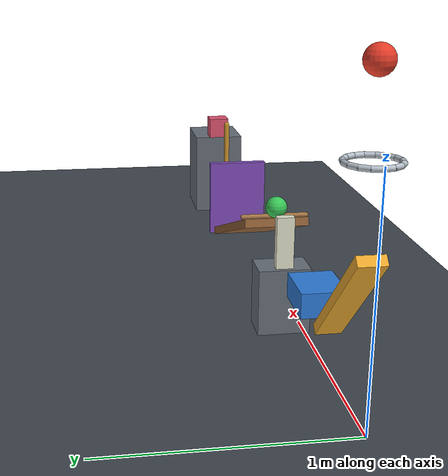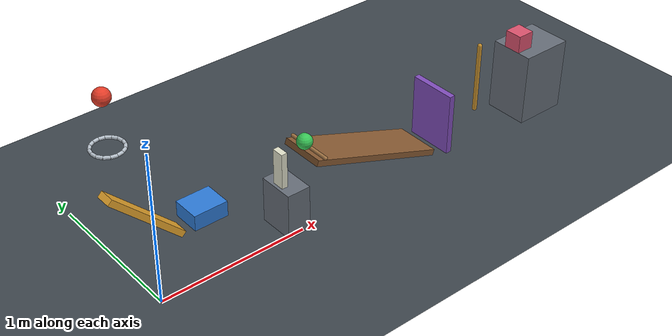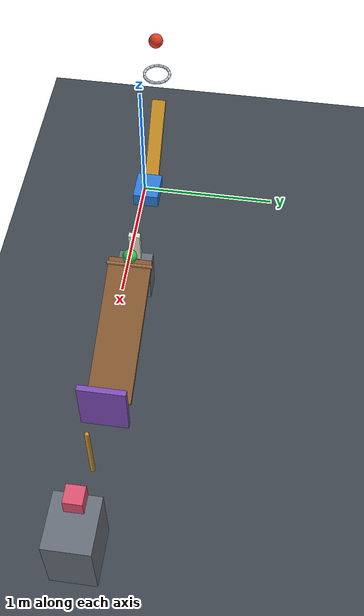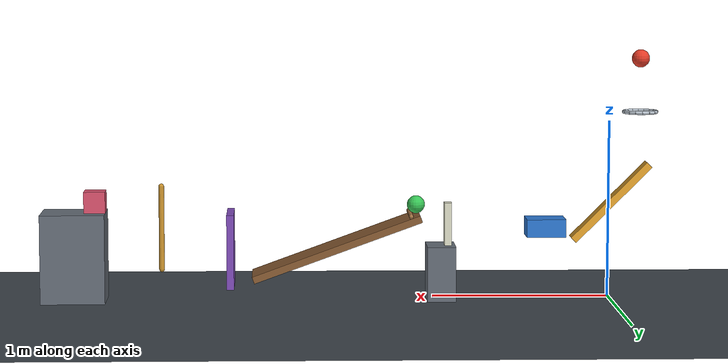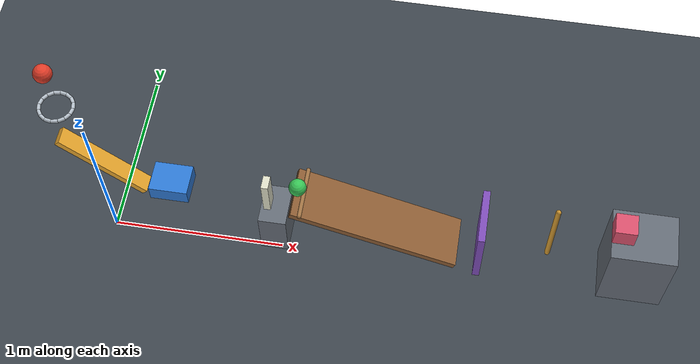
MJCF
<mujoco model="passive_chain">
  <compiler angle="degree" autolimits="true" inertiafromgeom="true"/>
  <option timestep="0.002" gravity="0 0 -9.81" integrator="implicitfast" solver="Newton" iterations="100" tolerance="1e-10" cone="elliptic"/>
  <size njmax="2000" nconmax="400"/>

  <!-- Sliding friction is 0.72. The additional coefficients provide torsional and rolling friction. -->
  <!-- solref damping ratio 0.71563 nominally corresponds to restitution 0.04. -->
  <!-- Positive hinge travel lowers the lever's left end and tips the door and inverted pendulum forward. -->

  <visual>
    <headlight ambient="0.35 0.35 0.35" diffuse="0.65 0.65 0.65" specular="0.15 0.15 0.15"/>
    <global azimuth="135" elevation="-22"/>
  </visual>

  <worldbody>
    <light name="key_light" pos="0 0 5" dir="0 0 -1" directional="true"/>
    <camera name="overview" pos="4.3 -6.5 3.2" xyaxes="0.92 0.39 0 -0.14 0.33 0.93"/>

    <geom name="floor" type="plane" pos="0 0 0" size="8 4 0.1" friction="0.72 0.005 0.003" condim="6" solref="0.008 0.71563" solimp="0.999 0.999 0.001" rgba="0.24 0.27 0.30 1"/>

    <!-- Ball-center distances: 0.30 m to the ring plane, then 0.25 m to first lever contact. -->
    <body name="ball1" pos="-0.16 0.10 1.358994949">
      <freejoint name="ball1_free"/>
      <geom name="ball1_sphere" type="sphere" size="0.05" mass="0.20" friction="0.72 0.005 0.003" condim="6" solref="0.008 0.71563" solimp="0.999 0.999 0.001" rgba="0.90 0.24 0.16 1"/>
    </body>

    <!-- Sixteen capsule segments form a horizontal ring with 0.16 m minimum clear diameter. -->
    <body name="ring1" pos="-0.16 0.10 1.058994949">
      <geom name="ring1_segment01" type="capsule" fromto="0.0917632 0 0 0.0847781 0.0351152 0" size="0.01" friction="0.72 0.005 0.003" condim="6" solref="0.008 0.71563" solimp="0.999 0.999 0.001" rgba="0.72 0.76 0.80 1"/>
      <geom name="ring1_segment02" type="capsule" fromto="0.0847781 0.0351152 0 0.0648864 0.0648864 0" size="0.01" friction="0.72 0.005 0.003" condim="6" solref="0.008 0.71563" solimp="0.999 0.999 0.001" rgba="0.72 0.76 0.80 1"/>
      <geom name="ring1_segment03" type="capsule" fromto="0.0648864 0.0648864 0 0.0351152 0.0847781 0" size="0.01" friction="0.72 0.005 0.003" condim="6" solref="0.008 0.71563" solimp="0.999 0.999 0.001" rgba="0.72 0.76 0.80 1"/>
      <geom name="ring1_segment04" type="capsule" fromto="0.0351152 0.0847781 0 0 0.0917632 0" size="0.01" friction="0.72 0.005 0.003" condim="6" solref="0.008 0.71563" solimp="0.999 0.999 0.001" rgba="0.72 0.76 0.80 1"/>
      <geom name="ring1_segment05" type="capsule" fromto="0 0.0917632 0 -0.0351152 0.0847781 0" size="0.01" friction="0.72 0.005 0.003" condim="6" solref="0.008 0.71563" solimp="0.999 0.999 0.001" rgba="0.72 0.76 0.80 1"/>
      <geom name="ring1_segment06" type="capsule" fromto="-0.0351152 0.0847781 0 -0.0648864 0.0648864 0" size="0.01" friction="0.72 0.005 0.003" condim="6" solref="0.008 0.71563" solimp="0.999 0.999 0.001" rgba="0.72 0.76 0.80 1"/>
      <geom name="ring1_segment07" type="capsule" fromto="-0.0648864 0.0648864 0 -0.0847781 0.0351152 0" size="0.01" friction="0.72 0.005 0.003" condim="6" solref="0.008 0.71563" solimp="0.999 0.999 0.001" rgba="0.72 0.76 0.80 1"/>
      <geom name="ring1_segment08" type="capsule" fromto="-0.0847781 0.0351152 0 -0.0917632 0 0" size="0.01" friction="0.72 0.005 0.003" condim="6" solref="0.008 0.71563" solimp="0.999 0.999 0.001" rgba="0.72 0.76 0.80 1"/>
      <geom name="ring1_segment09" type="capsule" fromto="-0.0917632 0 0 -0.0847781 -0.0351152 0" size="0.01" friction="0.72 0.005 0.003" condim="6" solref="0.008 0.71563" solimp="0.999 0.999 0.001" rgba="0.72 0.76 0.80 1"/>
      <geom name="ring1_segment10" type="capsule" fromto="-0.0847781 -0.0351152 0 -0.0648864 -0.0648864 0" size="0.01" friction="0.72 0.005 0.003" condim="6" solref="0.008 0.71563" solimp="0.999 0.999 0.001" rgba="0.72 0.76 0.80 1"/>
      <geom name="ring1_segment11" type="capsule" fromto="-0.0648864 -0.0648864 0 -0.0351152 -0.0847781 0" size="0.01" friction="0.72 0.005 0.003" condim="6" solref="0.008 0.71563" solimp="0.999 0.999 0.001" rgba="0.72 0.76 0.80 1"/>
      <geom name="ring1_segment12" type="capsule" fromto="-0.0351152 -0.0847781 0 0 -0.0917632 0" size="0.01" friction="0.72 0.005 0.003" condim="6" solref="0.008 0.71563" solimp="0.999 0.999 0.001" rgba="0.72 0.76 0.80 1"/>
      <geom name="ring1_segment13" type="capsule" fromto="0 -0.0917632 0 0.0351152 -0.0847781 0" size="0.01" friction="0.72 0.005 0.003" condim="6" solref="0.008 0.71563" solimp="0.999 0.999 0.001" rgba="0.72 0.76 0.80 1"/>
      <geom name="ring1_segment14" type="capsule" fromto="0.0351152 -0.0847781 0 0.0648864 -0.0648864 0" size="0.01" friction="0.72 0.005 0.003" condim="6" solref="0.008 0.71563" solimp="0.999 0.999 0.001" rgba="0.72 0.76 0.80 1"/>
      <geom name="ring1_segment15" type="capsule" fromto="0.0648864 -0.0648864 0 0.0847781 -0.0351152 0" size="0.01" friction="0.72 0.005 0.003" condim="6" solref="0.008 0.71563" solimp="0.999 0.999 0.001" rgba="0.72 0.76 0.80 1"/>
      <geom name="ring1_segment16" type="capsule" fromto="0.0847781 -0.0351152 0 0.0917632 0 0" size="0.01" friction="0.72 0.005 0.003" condim="6" solref="0.008 0.71563" solimp="0.999 0.999 0.001" rgba="0.72 0.76 0.80 1"/>
    </body>

    <!-- Initial lever inclination lets its rising right end also travel forward into the cart. -->
    <body name="lever1" pos="0 0.10 0.55" euler="0 45 0">
      <joint name="lever1_hinge" type="hinge" axis="0 -1 0" damping="0.04" limited="true" range="0 45" solreflimit="0.004 1" solimplimit="0.999 0.999 0.001"/>
      <geom name="lever1_beam" type="box" size="0.30 0.05 0.02" mass="0.50" friction="0.72 0.005 0.003" condim="6" solref="0.008 0.71563" solimp="0.999 0.999 0.001" rgba="0.92 0.66 0.18 1"/>
    </body>

    <!-- Cart front initially lies at x=0.48; the domino rear face is at x=0.90. -->
    <body name="cart1" pos="0.37 0.10 0.41">
      <joint name="cart1_slide" type="slide" axis="1 0 0" damping="0.20" limited="true" range="0 0.60" solreflimit="0.004 1" solimplimit="0.999 0.999 0.001"/>
      <geom name="cart1_box" type="box" size="0.11 0.09 0.05" mass="0.50" friction="0.72 0.005 0.003" condim="6" solref="0.008 0.71563" solimp="0.999 0.999 0.001" rgba="0.18 0.48 0.84 1"/>
    </body>

    <body name="domino_support" pos="0.96 0.10 0.155">
      <geom name="domino_support_box" type="box" size="0.08 0.12 0.155" friction="0.72 0.005 0.003" condim="6" solref="0.008 0.71563" solimp="0.999 0.999 0.001" rgba="0.40 0.43 0.47 1"/>
    </body>

    <!-- The domino's 0.04 m thickness is aligned with the direction of toppling. -->
    <body name="domino1" pos="0.92 0.10 0.43">
      <freejoint name="domino1_free"/>
      <geom name="domino1_box" type="box" size="0.02 0.04 0.12" mass="0.25" friction="0.72 0.005 0.003" condim="6" solref="0.008 0.71563" solimp="0.999 0.999 0.001" rgba="0.88 0.88 0.79 1"/>
    </body>

    <!-- Domino and ball2 centers have 0.18 m horizontal spacing. -->
    <body name="ball2" pos="1.10 0.10 0.539004774">
      <freejoint name="ball2_free"/>
      <geom name="ball2_sphere" type="sphere" size="0.05" mass="0.20" friction="0.72 0.005 0.003" condim="6" solref="0.008 0.71563" solimp="0.999 0.999 0.001" rgba="0.22 0.78 0.34 1"/>
    </body>

    <!-- Ramp upper surface: length 1.00 m, width 0.30 m, inclination 20 degrees. -->
    <!-- Its downhill endpoint is (2.022591614, 0.10, 0.15). -->
    <!-- A shallow transverse retaining lip holds ball2 until the domino knocks it over the lip. -->
    <body name="ramp1" pos="1.545904900 0.10 0.302216219" euler="0 20 0">
      <geom name="ramp1_surface" type="box" size="0.50 0.15 0.02" friction="0.72 0.005 0.003" condim="6" solref="0.008 0.71563" solimp="0.999 0.999 0.001" rgba="0.54 0.36 0.20 1"/>
      <geom name="ramp1_retaining_lip" type="capsule" fromto="-0.451010205 -0.15 0.032 -0.451010205 0.15 0.032" size="0.012" friction="0.72 0.005 0.003" condim="6" solref="0.008 0.71563" solimp="0.999 0.999 0.001" rgba="0.64 0.46 0.27 1"/>
    </body>

    <!-- The initial upstream door face is exactly 0.10 m beyond the ramp endpoint. -->
    <!-- The bottom-hinged panel balances upright until ball2 supplies the initiating impulse. -->
    <body name="door1" pos="2.142591614 0.10 0.08">
      <joint name="door1_hinge" type="hinge" axis="0 1 0" damping="0.04" limited="true" range="0 70" solreflimit="0.004 1" solimplimit="0.999 0.999 0.001"/>
      <geom name="door1_panel" type="box" pos="0 0 0.21" size="0.02 0.16 0.21" mass="0.45" friction="0.72 0.005 0.003" condim="6" solref="0.008 0.71563" solimp="0.999 0.999 0.001" rgba="0.50 0.30 0.73 1"/>
    </body>

    <!-- A 0.50 m, 0.35 kg inverted rigid pendulum: its initial gravitational hinge torque is zero. -->
    <!-- Door contact tips it forward; gravity then assists travel to its 38-degree stop. -->
    <body name="pendulum1" pos="2.53 0.10 0.16">
      <joint name="pendulum1_hinge" type="hinge" axis="0 1 0" damping="0.04" limited="true" range="0 38" solreflimit="0.004 1" solimplimit="0.999 0.999 0.001"/>
      <geom name="pendulum1_rod" type="capsule" fromto="0 0 0.015 0 0 0.485" size="0.015" mass="0.35" friction="0.72 0.005 0.003" condim="6" solref="0.008 0.71563" solimp="0.999 0.999 0.001" rgba="0.80 0.58 0.18 1"/>
    </body>

    <body name="block_support" pos="3.022 0.10 0.25">
      <geom name="block_support_box" type="box" size="0.18 0.15 0.25" friction="0.72 0.005 0.003" condim="6" solref="0.008 0.71563" solimp="0.999 0.999 0.001" rgba="0.40 0.43 0.47 1"/>
    </body>

    <!-- The pendulum first contacts the block immediately before its 38-degree hard stop. -->
    <body name="block1" pos="2.902 0.10 0.56">
      <freejoint name="block1_free"/>
      <geom name="block1_cube" type="box" size="0.06 0.06 0.06" mass="0.35" friction="0.72 0.005 0.003" condim="6" solref="0.008 0.71563" solimp="0.999 0.999 0.001" rgba="0.86 0.32 0.43 1"/>
    </body>
  </worldbody>

  <!-- Omitted keyframe positions use qpos0; omitted velocities are all zero. -->
  <keyframe>
    <key name="start" time="0"/>
  </keyframe>
</mujoco>
